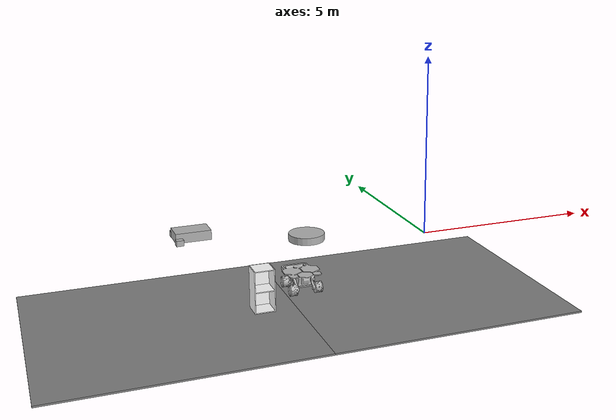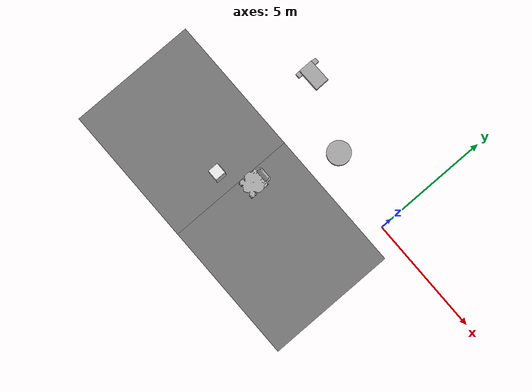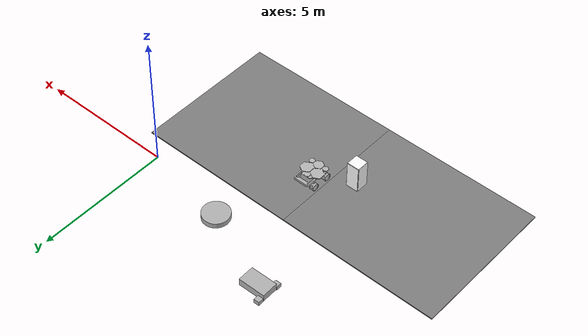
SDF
<sdf version="1.7">
 <world name="default">
  <model name="mars_rover">
   <static>1</static>
   <link name="link">
    <collision name="solar_panel_collision">
     <pose>0 -0.06945 0.47293 0 -0 0</pose>
     <geometry><box><size>0.87974 0.8821 0.02602</size></box></geometry>
    </collision>
    <collision name="chassis_collision">
     <pose>0 -0.05 0.31475 0 -0 0</pose>
     <geometry><box><size>0.49522 0.67401 0.28915</size></box></geometry>
    </collision>
    <collision name="rear_left_bumper_collision">
     <pose>0.30107 0.3835 0.38976 0 -0 0</pose>
     <geometry><box><size>0.04442 0.38897 0.07918</size></box></geometry>
    </collision>
    <collision name="rear_right_bumper_collision">
     <pose>-0.30107 0.3835 0.38976 0 -0 0</pose>
     <geometry><box><size>0.04442 0.38897 0.07918</size></box></geometry>
    </collision>
    <collision name="rear_bumper_collision">
     <pose>0 0.59414 0.38976 0 -0 0</pose>
     <geometry><box><size>0.56656 0.04442 0.07918</size></box></geometry>
    </collision>
    <collision name="bin_back_panel_collision">
     <pose>0 0.47 0.32114 0.69137 -0 0</pose>
     <geometry><box><size>0.43774 0.212366 0.05173</size></box></geometry>
    </collision>
    <collision name="bin_left_panel_collision1">
     <pose>0.22615 0.32897 0.33193 0 -0 0</pose>
     <geometry><box><size>0.01116 0.19338 0.16304</size></box></geometry>
    </collision>
    <collision name="bin_left_panel_collision2">
     <pose>0.22615 0.471 0.39308 0 -0 0</pose>
     <geometry><box><size>0.01116 0.15 0.04</size></box></geometry>
    </collision>
    <collision name="bin_left_panel_collision3">
     <pose>0.22615 0.45 0.35308 0 -0 0</pose>
     <geometry><box><size>0.01116 0.15 0.04</size></box></geometry>
    </collision>
    <collision name="bin_left_panel_collision4">
     <pose>0.22615 0.39308 0.31308 0 -0 0</pose>
     <geometry><box><size>0.01116 0.15 0.04</size></box></geometry>
    </collision>
    <collision name="bin_right_panel_collision1">
     <pose>-0.22615 0.32897 0.33193 0 -0 0</pose>
     <geometry><box><size>0.01116 0.19338 0.16304</size></box></geometry>
    </collision>
    <collision name="bin_right_panel_collision2">
     <pose>-0.22615 0.471 0.39308 0 -0 0</pose>
     <geometry><box><size>0.01116 0.15 0.04</size></box></geometry>
    </collision>
    <collision name="bin_right_panel_collision3">
     <pose>-0.22615 0.45 0.35308 0 -0 0</pose>
     <geometry><box><size>0.01116 0.15 0.04</size></box></geometry>
    </collision>
    <collision name="bin_right_panel_collision4">
     <pose>-0.22615 0.39308 0.31308 0 -0 0</pose>
     <geometry><box><size>0.01116 0.15 0.04</size></box></geometry>
    </collision>
    <collision name="bin_front_panel_collision">
     <pose>0 0.30047 0.32114 2.26207 -0 0</pose>
     <geometry><box><size>0.43774 0.212366 0.05173</size></box></geometry>
    </collision>
    <collision name="front_left_wheel_collision">
     <pose>0.31103 -0.32115 0.1358 1.5707 0 1.5707</pose>
     <geometry><cylinder><radius>0.1358</radius><length>0.1641</length></cylinder></geometry>
    </collision>
    <collision name="front_right_wheel_collision">
     <pose>-0.31103 -0.32115 0.1358 1.5707 0 1.5707</pose>
     <geometry><cylinder><radius>0.1358</radius><length>0.1641</length></cylinder></geometry>
    </collision>
    <collision name="rear_left_wheel_collision">
     <pose>0.31103 0.28049 0.1358 1.5707 0 1.5707</pose>
     <geometry><cylinder><radius>0.1358</radius><length>0.1641</length></cylinder></geometry>
    </collision>
    <collision name="rear_right_wheel_collision">
     <pose>-0.31103 0.28049 0.1358 1.5707 0 1.5707</pose>
     <geometry><cylinder><radius>0.1358</radius><length>0.1641</length></cylinder></geometry>
    </collision>
    <visual name="visual">
     <geometry><mesh><uri>model://mars_rover/meshes/rover.dae</uri></mesh></geometry>
    </visual>
   </link>
   <pose>-4.55317 -2.65606 0 0 -0 0</pose>
  </model>
  <model name="cabinet_clone_0_clone">
   <static>1</static>
   <link name="cabinet_bottom_plate">
    <inertial>
     <pose>0 0 -1 0 -0 0</pose>
     <inertia><ixx>2.05</ixx><ixy>0</ixy><ixz>0</ixz><iyy>2.05</iyy><iyz>0</iyz><izz>2.05</izz></inertia>
     <mass>25</mass>
    </inertial>
    <collision name="cabinet_bottom_plate_geom">
     <pose>0 0 0.01 0 -0 0</pose>
     <geometry><box><size>0.45 0.45 0.02</size></box></geometry>
    </collision>
    <visual name="cabinet_bottom_plate_geom_visual">
     <pose>0 0 0.01 0 -0 0</pose>
     <geometry><box><size>0.45 0.45 0.02</size></box></geometry>
     <material>
      <ambient>1 1 1 1</ambient>
      <diffuse>1 1 1 1</diffuse>
      <specular>0.08 0.08 0.08 1</specular>
      <emissive>0 0 0 1</emissive>
      <pbr>
       <metal>
        <albedo_map>model://among_us_world/materials/textures/legacy_wood.jpg</albedo_map>
        <roughness>0.62</roughness>
        <metalness>0</metalness>
       </metal>
      </pbr>
     </material>
    </visual>
    <collision name="cabinet_bottom_plate_geom_cabinet_back_plate">
     <pose>0.235 0 0.51 0 -0 0</pose>
     <geometry><box><size>0.02 0.45 1.02</size></box></geometry>
    </collision>
    <visual name="cabinet_bottom_plate_geom_cabinet_back_plate_visual">
     <pose>0.235 0 0.51 0 -0 0</pose>
     <geometry><box><size>0.02 0.45 1.02</size></box></geometry>
     <material>
      <ambient>1 1 1 1</ambient>
      <diffuse>1 1 1 1</diffuse>
      <specular>0.08 0.08 0.08 1</specular>
      <emissive>0 0 0 1</emissive>
      <pbr>
       <metal>
        <albedo_map>model://among_us_world/materials/textures/legacy_wood.jpg</albedo_map>
        <roughness>0.62</roughness>
        <metalness>0</metalness>
       </metal>
      </pbr>
     </material>
    </visual>
    <collision name="cabinet_bottom_plate_geom_cabinet_left_plate">
     <pose>0 0.235 0.51 0 -0 0</pose>
     <geometry><box><size>0.45 0.02 1.02</size></box></geometry>
    </collision>
    <visual name="cabinet_bottom_plate_geom_cabinet_left_plate_visual">
     <pose>0 0.235 0.51 0 -0 0</pose>
     <geometry><box><size>0.45 0.02 1.02</size></box></geometry>
     <material>
      <ambient>1 1 1 1</ambient>
      <diffuse>1 1 1 1</diffuse>
      <specular>0.08 0.08 0.08 1</specular>
      <emissive>0 0 0 1</emissive>
      <pbr>
       <metal>
        <albedo_map>model://among_us_world/materials/textures/legacy_wood.jpg</albedo_map>
        <roughness>0.62</roughness>
        <metalness>0</metalness>
       </metal>
      </pbr>
     </material>
    </visual>
    <collision name="cabinet_bottom_plate_geom_cabinet_middle_plate">
     <pose>0 0 0.51 0 -0 0</pose>
     <geometry><box><size>0.45 0.45 0.02</size></box></geometry>
    </collision>
    <visual name="cabinet_bottom_plate_geom_cabinet_middle_plate_visual">
     <pose>0 0 0.51 0 -0 0</pose>
     <geometry><box><size>0.45 0.45 0.02</size></box></geometry>
     <material>
      <ambient>1 1 1 1</ambient>
      <diffuse>1 1 1 1</diffuse>
      <specular>0.08 0.08 0.08 1</specular>
      <emissive>0 0 0 1</emissive>
      <pbr>
       <metal>
        <albedo_map>model://among_us_world/materials/textures/legacy_wood.jpg</albedo_map>
        <roughness>0.62</roughness>
        <metalness>0</metalness>
       </metal>
      </pbr>
     </material>
    </visual>
    <collision name="cabinet_bottom_plate_geom_cabinet_right_plate">
     <pose>0 -0.235 0.51 0 -0 0</pose>
     <geometry><box><size>0.45 0.02 1.02</size></box></geometry>
    </collision>
    <visual name="cabinet_bottom_plate_geom_cabinet_right_plate_visual">
     <pose>0 -0.235 0.51 0 -0 0</pose>
     <geometry><box><size>0.45 0.02 1.02</size></box></geometry>
     <material>
      <ambient>1 1 1 1</ambient>
      <diffuse>1 1 1 1</diffuse>
      <specular>0.08 0.08 0.08 1</specular>
      <emissive>0 0 0 1</emissive>
      <pbr>
       <metal>
        <albedo_map>model://among_us_world/materials/textures/legacy_wood.jpg</albedo_map>
        <roughness>0.62</roughness>
        <metalness>0</metalness>
       </metal>
      </pbr>
     </material>
    </visual>
    <collision name="cabinet_bottom_plate_geom_cabinet_top_plate">
     <pose>0 0 1.01 0 -0 0</pose>
     <geometry><box><size>0.45 0.45 0.02</size></box></geometry>
    </collision>
    <visual name="cabinet_bottom_plate_geom_cabinet_top_plate_visual">
     <pose>0 0 1.01 0 -0 0</pose>
     <geometry><box><size>0.45 0.45 0.02</size></box></geometry>
     <material>
      <ambient>1 1 1 1</ambient>
      <diffuse>1 1 1 1</diffuse>
      <specular>0.08 0.08 0.08 1</specular>
      <emissive>0 0 0 1</emissive>
      <pbr>
       <metal>
        <albedo_map>model://among_us_world/materials/textures/legacy_wood.jpg</albedo_map>
        <roughness>0.62</roughness>
        <metalness>0</metalness>
       </metal>
      </pbr>
     </material>
    </visual>
   </link>
   <pose>-5.75867 -3.48219 0 0 -0 1.57</pose>
  </model>
  <model name="asphalt_tile_02_02">
   <static>1</static>
   <pose>-8.000 -3.450 -0.020 0 -0 0</pose>
   <link name="link">
    <collision name="collision"><geometry><box><size>6.000 5.500 0.040</size></box></geometry></collision>
    <visual name="visual">
     <cast_shadows>0</cast_shadows>
     <geometry><box><size>6.000 5.500 0.040</size></box></geometry>
     <material>
      <ambient>0.5 0.5 0.5 1</ambient>
      <diffuse>0.5 0.5 0.5 1</diffuse>
      <specular>0.2 0.2 0.2 1</specular>
      <emissive>0 0 0 1</emissive>
      <pbr>
       <metal>
        <albedo_map>model://asphalt_plane/materials/textures/tarmac.png</albedo_map>
        <roughness>0.85</roughness>
        <metalness>0</metalness>
       </metal>
      </pbr>
     </material>
    </visual>
   </link>
  </model>
  <model name="asphalt_tile_02_03">
   <static>1</static>
   <pose>-2.000 -3.450 -0.020 0 -0 0</pose>
   <link name="link">
    <collision name="collision"><geometry><box><size>6.000 5.500 0.040</size></box></geometry></collision>
    <visual name="visual">
     <cast_shadows>0</cast_shadows>
     <geometry><box><size>6.000 5.500 0.040</size></box></geometry>
     <material>
      <ambient>0.5 0.5 0.5 1</ambient>
      <diffuse>0.5 0.5 0.5 1</diffuse>
      <specular>0.2 0.2 0.2 1</specular>
      <emissive>0 0 0 1</emissive>
      <pbr>
       <metal>
        <albedo_map>model://asphalt_plane/materials/textures/tarmac.png</albedo_map>
        <roughness>0.85</roughness>
        <metalness>0</metalness>
       </metal>
      </pbr>
     </material>
    </visual>
   </link>
  </model>
  <model name="bed_clone">
   <link name="link_1">
    <inertial>
     <mass>0.166557</mass>
     <inertia>
      <ixx>0.00618823</ixx>
      <ixy>0</ixy>
      <ixz>0</ixz>
      <iyy>0.0149173</iyy>
      <iyz>0</iyz>
      <izz>0.0190304</izz>
     </inertia>
    </inertial>
    <pose>0.268517 -0.007523 0.053425 0 -0 0</pose>
    <visual name="visual">
     <geometry><box><size>1 0.609172 0.273416</size></box></geometry>
     <material>
      <ambient>0.7 0.7 0.7 1</ambient>
      <diffuse>0.7 0.7 0.7 1</diffuse>
      <specular>0.08 0.08 0.08 1</specular>
      <emissive>0 0 0 1</emissive>
      <pbr><metal><roughness>0.8</roughness><metalness>0</metalness></metal></pbr>
     </material>
    </visual>
    <collision name="collision">
     <geometry><box><size>1 0.609172 0.273416</size></box></geometry>
     <surface>
      <friction>
       <ode><mu>1</mu><mu2>1</mu2><fdir1>0 0 0</fdir1><slip1>0</slip1><slip2>0</slip2></ode>
       <torsional>
        <coefficient>1</coefficient>
        <patch_radius>0</patch_radius>
        <surface_radius>0</surface_radius>
        <use_patch_radius>1</use_patch_radius>
        <ode><slip>0</slip></ode>
       </torsional>
      </friction>
      <bounce><restitution_coefficient>0</restitution_coefficient><threshold>1e+06</threshold></bounce>
      <contact>
       <collide_without_contact>0</collide_without_contact>
       <collide_without_contact_bitmask>1</collide_without_contact_bitmask>
       <collide_bitmask>1</collide_bitmask>
       <ode>
        <soft_cfm>0</soft_cfm>
        <soft_erp>0.2</soft_erp>
        <kp>1e+13</kp>
        <kd>1</kd>
        <max_vel>0.01</max_vel>
        <min_depth>0</min_depth>
       </ode>
       <bullet>
        <split_impulse>1</split_impulse>
        <split_impulse_penetration_threshold>-0.01</split_impulse_penetration_threshold>
        <soft_cfm>0</soft_cfm>
        <soft_erp>0.2</soft_erp>
        <kp>1e+13</kp>
        <kd>1</kd>
       </bullet>
      </contact>
     </surface>
    </collision>
   </link>
   <link name="link_2">
    <inertial>
     <mass>0.00661892</mass>
     <inertia>
      <ixx>3.651e-05</ixx>
      <ixy>0</ixy>
      <ixz>0</ixz>
      <iyy>3.722e-05</iyy>
      <iyz>0</iyz>
      <izz>4.631e-05</izz>
     </inertia>
    </inertial>
    <pose>-0.144333 -0.400103 -0.02691 0 -0 0</pose>
    <visual name="visual">
     <geometry><box><size>0.206441 0.203314 0.157681</size></box></geometry>
     <material>
      <ambient>0.7 0.7 0.7 1</ambient>
      <diffuse>0.7 0.7 0.7 1</diffuse>
      <specular>0.08 0.08 0.08 1</specular>
      <emissive>0 0 0 1</emissive>
      <pbr><metal><roughness>0.8</roughness><metalness>0</metalness></metal></pbr>
     </material>
    </visual>
    <collision name="collision">
     <geometry><box><size>0.206441 0.203314 0.157681</size></box></geometry>
     <surface>
      <friction>
       <ode><mu>1</mu><mu2>1</mu2><fdir1>0 0 0</fdir1><slip1>0</slip1><slip2>0</slip2></ode>
       <torsional>
        <coefficient>1</coefficient>
        <patch_radius>0</patch_radius>
        <surface_radius>0</surface_radius>
        <use_patch_radius>1</use_patch_radius>
        <ode><slip>0</slip></ode>
       </torsional>
      </friction>
      <bounce><restitution_coefficient>0</restitution_coefficient><threshold>1e+06</threshold></bounce>
      <contact>
       <collide_without_contact>0</collide_without_contact>
       <collide_without_contact_bitmask>1</collide_without_contact_bitmask>
       <collide_bitmask>1</collide_bitmask>
       <ode>
        <soft_cfm>0</soft_cfm>
        <soft_erp>0.2</soft_erp>
        <kp>1e+13</kp>
        <kd>1</kd>
        <max_vel>0.01</max_vel>
        <min_depth>0</min_depth>
       </ode>
       <bullet>
        <split_impulse>1</split_impulse>
        <split_impulse_penetration_threshold>-0.01</split_impulse_penetration_threshold>
        <soft_cfm>0</soft_cfm>
        <soft_erp>0.2</soft_erp>
        <kp>1e+13</kp>
        <kd>1</kd>
       </bullet>
      </contact>
     </surface>
    </collision>
   </link>
   <link name="link_2_clone">
    <inertial>
     <mass>0.00661892</mass>
     <inertia>
      <ixx>3.651e-05</ixx>
      <ixy>0</ixy>
      <ixz>0</ixz>
      <iyy>3.722e-05</iyy>
      <iyz>0</iyz>
      <izz>4.631e-05</izz>
     </inertia>
    </inertial>
    <pose>-0.124183 0.407627 -0.026515 0 -0 0</pose>
    <visual name="visual">
     <geometry><box><size>0.206441 0.203314 0.157681</size></box></geometry>
     <material>
      <ambient>0.7 0.7 0.7 1</ambient>
      <diffuse>0.7 0.7 0.7 1</diffuse>
      <specular>0.08 0.08 0.08 1</specular>
      <emissive>0 0 0 1</emissive>
      <pbr><metal><roughness>0.8</roughness><metalness>0</metalness></metal></pbr>
     </material>
    </visual>
    <collision name="collision">
     <geometry><box><size>0.206441 0.203314 0.157681</size></box></geometry>
     <surface>
      <friction>
       <ode><mu>1</mu><mu2>1</mu2><fdir1>0 0 0</fdir1><slip1>0</slip1><slip2>0</slip2></ode>
       <torsional>
        <coefficient>1</coefficient>
        <patch_radius>0</patch_radius>
        <surface_radius>0</surface_radius>
        <use_patch_radius>1</use_patch_radius>
        <ode><slip>0</slip></ode>
       </torsional>
      </friction>
      <bounce><restitution_coefficient>0</restitution_coefficient><threshold>1e+06</threshold></bounce>
      <contact>
       <collide_without_contact>0</collide_without_contact>
       <collide_without_contact_bitmask>1</collide_without_contact_bitmask>
       <collide_bitmask>1</collide_bitmask>
       <ode>
        <soft_cfm>0</soft_cfm>
        <soft_erp>0.2</soft_erp>
        <kp>1e+13</kp>
        <kd>1</kd>
        <max_vel>0.01</max_vel>
        <min_depth>0</min_depth>
       </ode>
       <bullet>
        <split_impulse>1</split_impulse>
        <split_impulse_penetration_threshold>-0.01</split_impulse_penetration_threshold>
        <soft_cfm>0</soft_cfm>
        <soft_erp>0.2</soft_erp>
        <kp>1e+13</kp>
        <kd>1</kd>
       </bullet>
      </contact>
     </surface>
    </collision>
   </link>
   <static>1</static>
   <pose>-6.51457 1.90124 0.093283 0 -0 0.014289</pose>
  </model>
  <model name="unit_cylinder_0">
   <pose>-3.29507 0.643046 0.110467 -3e-06 -3e-06 0</pose>
   <link name="link">
    <inertial>
     <mass>1</mass>
     <inertia><ixx>0.145833</ixx><ixy>0</ixy><ixz>0</ixz><iyy>0.145833</iyy><iyz>0</iyz><izz>0.125</izz></inertia>
    </inertial>
    <collision name="collision">
     <geometry><cylinder><radius>0.5</radius><length>0.200944</length></cylinder></geometry>
    </collision>
    <visual name="visual">
     <geometry><cylinder><radius>0.5</radius><length>0.200944</length></cylinder></geometry>
     <material>
      <ambient>0.7 0.7 0.7 1</ambient>
      <diffuse>0.7 0.7 0.7 1</diffuse>
      <specular>0.08 0.08 0.08 1</specular>
      <emissive>0 0 0 1</emissive>
      <pbr><metal><roughness>0.8</roughness><metalness>0</metalness></metal></pbr>
     </material>
    </visual>
   </link>
  </model>
 </world>
</sdf>
